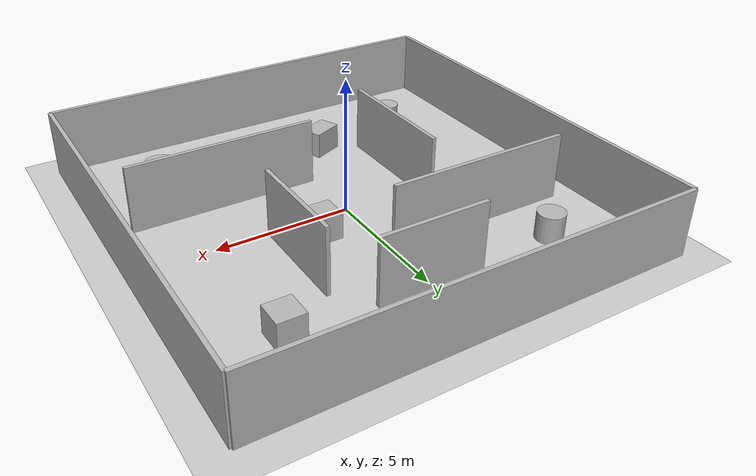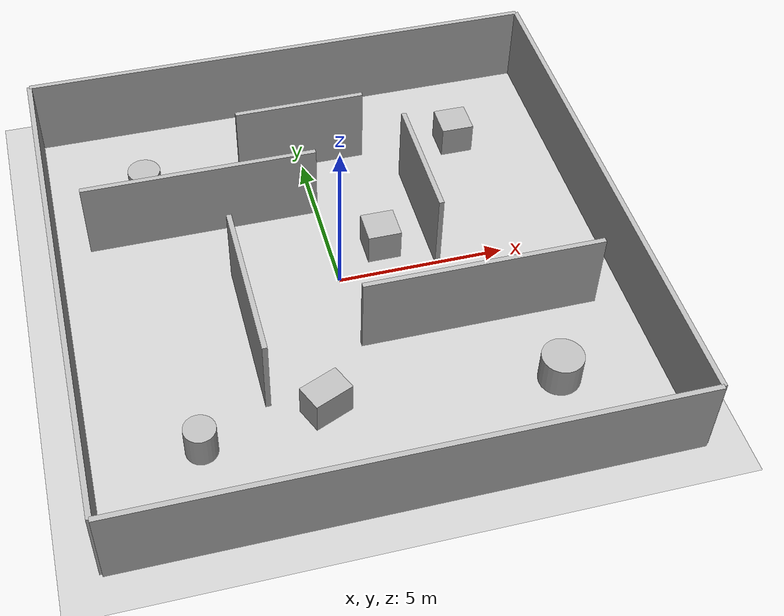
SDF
<?xml version="1.0" ?>
<sdf version="1.9">
  <world name="atv_navigation_world">

    <!-- ================= PHYSICS ================= -->

    <gravity>0 0 -9.8</gravity>

    <physics name="default_physics" type="ode">
      <max_step_size>0.001</max_step_size>
      <real_time_factor>1.0</real_time_factor>
      <real_time_update_rate>1.0</real_time_update_rate>
    </physics>

    <!-- Required Gazebo world systems -->

    <plugin
      filename="gz-sim-physics-system"
      name="gz::sim::systems::Physics">
    </plugin>

    <plugin
      filename="gz-sim-user-commands-system"
      name="gz::sim::systems::UserCommands">
    </plugin>

    <plugin
      filename="gz-sim-scene-broadcaster-system"
      name="gz::sim::systems::SceneBroadcaster">
    </plugin>

    <!-- IMU system -->
    <plugin
      filename="gz-sim-imu-system"
      name="gz::sim::systems::Imu">
    </plugin>

    <!-- ================= GROUND ================= -->

    <model name="ground">
      <static>true</static>

      <link name="link">

        <collision name="collision">
          <geometry>
            <plane>
              <normal>0 0 1</normal>
              <size>30 30</size>
            </plane>
          </geometry>
        </collision>

        <visual name="visual">
          <geometry>
            <plane>
              <normal>0 0 1</normal>
              <size>30 30</size>
            </plane>
          </geometry>
        </visual>

      </link>
    </model>

    <!-- ================= SCENE ================= -->

    <scene>
      <ambient>0.7 0.7 0.7 1</ambient>
      <background>1 1 1 1</background>
      <shadows>true</shadows>
    </scene>

    <!-- ================= OUTER WALLS ================= -->

    <model name="outer_north">
      <static>true</static>
      <pose>0 8 1.25 0 0 0</pose>

      <link name="link">
        <collision name="collision">
          <geometry>
            <box>
              <size>16 0.15 2.5</size>
            </box>
          </geometry>
        </collision>

        <visual name="visual">
          <geometry>
            <box>
              <size>16 0.15 2.5</size>
            </box>
          </geometry>
        </visual>
      </link>
    </model>

    <model name="outer_south">
      <static>true</static>
      <pose>0 -8 1.25 0 0 0</pose>

      <link name="link">
        <collision name="collision">
          <geometry>
            <box>
              <size>16 0.15 2.5</size>
            </box>
          </geometry>
        </collision>

        <visual name="visual">
          <geometry>
            <box>
              <size>16 0.15 2.5</size>
            </box>
          </geometry>
        </visual>
      </link>
    </model>

    <model name="outer_east">
      <static>true</static>
      <pose>8 0 1.25 0 0 0</pose>

      <link name="link">
        <collision name="collision">
          <geometry>
            <box>
              <size>0.15 16 2.5</size>
            </box>
          </geometry>
        </collision>

        <visual name="visual">
          <geometry>
            <box>
              <size>0.15 16 2.5</size>
            </box>
          </geometry>
        </visual>
      </link>
    </model>

    <model name="outer_west">
      <static>true</static>
      <pose>-8 0 1.25 0 0 0</pose>

      <link name="link">
        <collision name="collision">
          <geometry>
            <box>
              <size>0.15 16 2.5</size>
            </box>
          </geometry>
        </collision>

        <visual name="visual">
          <geometry>
            <box>
              <size>0.15 16 2.5</size>
            </box>
          </geometry>
        </visual>
      </link>
    </model>

    <!-- ================= INTERNAL WALLS ================= -->

    <model name="wall_1">
      <static>true</static>
      <pose>-3.5 3.0 1.25 0 0 0</pose>

      <link name="link">
        <collision name="collision">
          <geometry>
            <box>
              <size>7 0.15 2.5</size>
            </box>
          </geometry>
        </collision>

        <visual name="visual">
          <geometry>
            <box>
              <size>7 0.15 2.5</size>
            </box>
          </geometry>
        </visual>
      </link>
    </model>

    <model name="wall_2">
      <static>true</static>
      <pose>3.5 -2.5 1.25 0 0 0</pose>

      <link name="link">
        <collision name="collision">
          <geometry>
            <box>
              <size>7 0.15 2.5</size>
            </box>
          </geometry>
        </collision>

        <visual name="visual">
          <geometry>
            <box>
              <size>7 0.15 2.5</size>
            </box>
          </geometry>
        </visual>
      </link>
    </model>

    <model name="wall_3">
      <static>true</static>
      <pose>-3.0 -1.5 1.25 0 0 1.5708</pose>

      <link name="link">
        <collision name="collision">
          <geometry>
            <box>
              <size>5 0.15 2.5</size>
            </box>
          </geometry>
        </collision>

        <visual name="visual">
          <geometry>
            <box>
              <size>5 0.15 2.5</size>
            </box>
          </geometry>
        </visual>
      </link>
    </model>

    <model name="wall_4">
      <static>true</static>
      <pose>3.0 2.0 1.25 0 0 1.5708</pose>

      <link name="link">
        <collision name="collision">
          <geometry>
            <box>
              <size>4 0.15 2.5</size>
            </box>
          </geometry>
        </collision>

        <visual name="visual">
          <geometry>
            <box>
              <size>4 0.15 2.5</size>
            </box>
          </geometry>
        </visual>
      </link>
    </model>

    <model name="wall_5">
      <static>true</static>
      <pose>0 5.2 1.25 0 0 0</pose>

      <link name="link">
        <collision name="collision">
          <geometry>
            <box>
              <size>4 0.15 2.5</size>
            </box>
          </geometry>
        </collision>

        <visual name="visual">
          <geometry>
            <box>
              <size>4 0.15 2.5</size>
            </box>
          </geometry>
        </visual>
      </link>
    </model>

    <!-- ================= BOXES ================= -->

    <model name="box_1">
      <static>true</static>
      <pose>1.5 1.0 0.5 0 0 0</pose>

      <link name="link">
        <collision name="collision">
          <geometry>
            <box>
              <size>1 1 1</size>
            </box>
          </geometry>
        </collision>

        <visual name="visual">
          <geometry>
            <box>
              <size>1 1 1</size>
            </box>
          </geometry>
        </visual>
      </link>
    </model>

    <model name="box_2">
      <static>true</static>
      <pose>-1.5 -4.5 0.5 0 0 0.4</pose>

      <link name="link">
        <collision name="collision">
          <geometry>
            <box>
              <size>1.2 0.8 1</size>
            </box>
          </geometry>
        </collision>

        <visual name="visual">
          <geometry>
            <box>
              <size>1.2 0.8 1</size>
            </box>
          </geometry>
        </visual>
      </link>
    </model>

    <model name="box_3">
      <static>true</static>
      <pose>5.0 5.0 0.5 0 0 0</pose>

      <link name="link">
        <collision name="collision">
          <geometry>
            <box>
              <size>1 1 1</size>
            </box>
          </geometry>
        </collision>

        <visual name="visual">
          <geometry>
            <box>
              <size>1 1 1</size>
            </box>
          </geometry>
        </visual>
      </link>
    </model>

    <!-- ================= CYLINDERS ================= -->

    <model name="cylinder_1">
      <static>true</static>
      <pose>-5.0 5.0 0.5 0 0 0</pose>

      <link name="link">
        <collision name="collision">
          <geometry>
            <cylinder>
              <radius>0.5</radius>
              <length>1</length>
            </cylinder>
          </geometry>
        </collision>

        <visual name="visual">
          <geometry>
            <cylinder>
              <radius>0.5</radius>
              <length>1</length>
            </cylinder>
          </geometry>
        </visual>
      </link>
    </model>

    <model name="cylinder_2">
      <static>true</static>
      <pose>5.0 -5.0 0.5 0 0 0</pose>

      <link name="link">
        <collision name="collision">
          <geometry>
            <cylinder>
              <radius>0.6</radius>
              <length>1</length>
            </cylinder>
          </geometry>
        </collision>

        <visual name="visual">
          <geometry>
            <cylinder>
              <radius>0.6</radius>
              <length>1</length>
            </cylinder>
          </geometry>
        </visual>
      </link>
    </model>

    <model name="cylinder_3">
      <static>true</static>
      <pose>-5.0 -5.0 0.5 0 0 0</pose>

      <link name="link">
        <collision name="collision">
          <geometry>
            <cylinder>
              <radius>0.45</radius>
              <length>1</length>
            </cylinder>
          </geometry>
        </collision>

        <visual name="visual">
          <geometry>
            <cylinder>
              <radius>0.45</radius>
              <length>1</length>
            </cylinder>
          </geometry>
        </visual>
      </link>
    </model>

    <!-- ================= SUN ================= -->

    <light name="sun" type="directional">
      <cast_shadows>true</cast_shadows>
      <pose>0 0 10 0 0 0</pose>
      <diffuse>0.8 0.8 0.8 1</diffuse>
      <specular>0.2 0.2 0.2 1</specular>
      <direction>-0.5 0.5 -1</direction>
    </light>

  </world>
</sdf>
